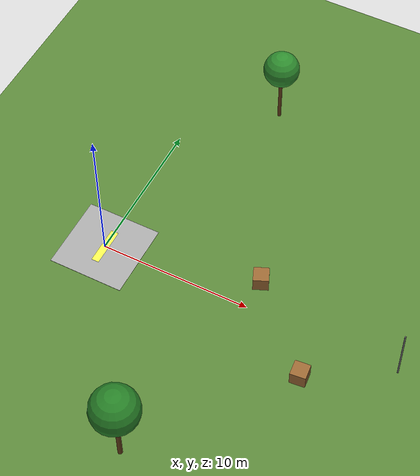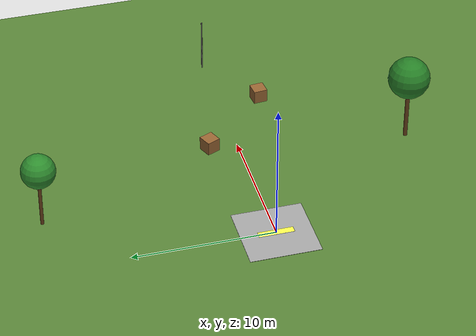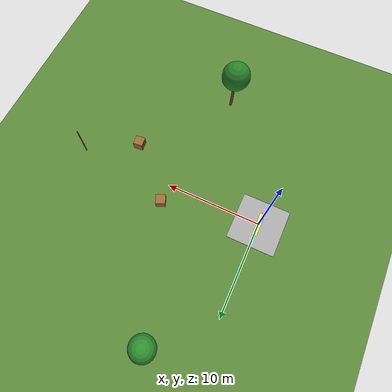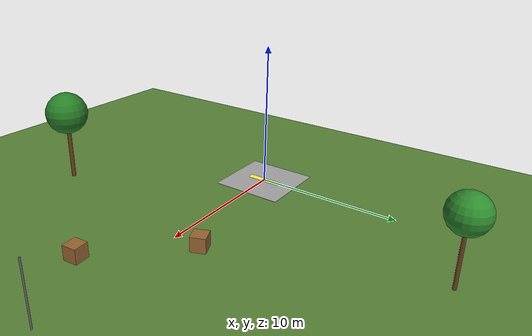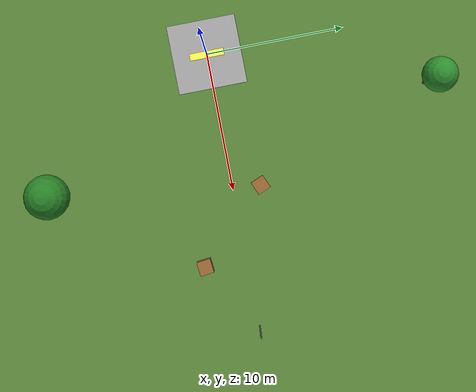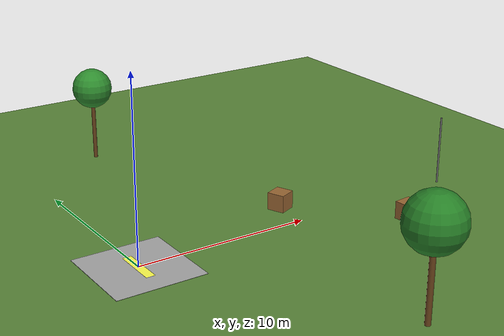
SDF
<?xml version="1.0"?>
<sdf version="1.9">
  <world name="outdoor_field">

    <!-- ═══════════════════════ PHYSICS ═══════════════════════════════ -->
    <physics name="1ms" type="dart">
      <max_step_size>0.001</max_step_size>   <!-- 1 kHz — good for multirotor -->
      <real_time_factor>1.0</real_time_factor>
    </physics>

    <!-- ═══════════════════════ PLUGINS ═══════════════════════════════ -->
    <plugin filename="gz-sim-physics-system"
            name="gz::sim::systems::Physics"/>
    <plugin filename="gz-sim-sensors-system"
            name="gz::sim::systems::Sensors">
      <render_engine>ogre2</render_engine>
    </plugin>
    <plugin filename="gz-sim-imu-system"
            name="gz::sim::systems::Imu"/>
    <plugin filename="gz-sim-air-pressure-system"
            name="gz::sim::systems::AirPressure"/>
    <plugin filename="gz-sim-navsat-system"
            name="gz::sim::systems::NavSat"/>
    <plugin filename="gz-sim-magnetometer-system"
            name="gz::sim::systems::Magnetometer"/>
    <plugin filename="gz-sim-user-commands-system"
            name="gz::sim::systems::UserCommands"/>
    <plugin filename="gz-sim-scene-broadcaster-system"
            name="gz::sim::systems::SceneBroadcaster"/>
    <plugin filename="gz-sim-contact-system"
	    name="gz::sim::systems::Contact"/>

    <!-- Wind — light breeze from the West, 3 m/s -->
    <plugin filename="gz-sim-wind-effects-system"
            name="gz::sim::systems::WindEffects">
      <force_approximation_scaling_factor>1</force_approximation_scaling_factor>
      <horizontal>
        <magnitude>
          <time_for_rise>10</time_for_rise>
          <sin><amplitude_percent>0.05</amplitude_percent><period>60</period></sin>
          <noise type="gaussian"><mean>0</mean><stddev>0.1</stddev></noise>
        </magnitude>
        <direction>
          <time_for_rise>30</time_for_rise>
          <sin><amplitude>5</amplitude><period>20</period></sin>
          <noise type="gaussian"><mean>0</mean><stddev>0.5</stddev></noise>
        </direction>
      </horizontal>
      <vertical><noise type="gaussian"><mean>0</mean><stddev>0.1</stddev></noise></vertical>
      <mean_wind_velocity>3 0 0</mean_wind_velocity>
    </plugin>

    <!-- ═══════════════════════ LIGHTING ══════════════════════════════ -->
    <light name="sun" type="directional">
      <cast_shadows>true</cast_shadows>
      <pose>0 0 100 0 0.4 0.785</pose>   <!-- morning light, SE direction -->
      <diffuse>0.95 0.92 0.88 1</diffuse>
      <specular>0.3 0.3 0.3 1</specular>
      <direction>-0.5 0.1 -0.9</direction>
      <attenuation><range>1000</range><constant>0.9</constant><linear>0.01</linear><quadratic>0.001</quadratic></attenuation>
    </light>

    <!-- Ambient sky glow -->
    <scene>
      <ambient>0.55 0.60 0.65 1</ambient>
      <background>0.53 0.71 0.89 1</background>
      <shadows>true</shadows>
    </scene>

    <!-- ═════════════════════ GROUND PLANE ════════════════════════════ -->
    <model name="ground_plane">
      <static>true</static>
      <link name="link">
        <collision name="ground_collision">
          <geometry><plane><normal>0 0 1</normal><size>200 200</size></plane></geometry>
          <surface>
            <friction><ode><mu>0.8</mu><mu2>0.8</mu2></ode></friction>
            <bounce><restitution_coefficient>0</restitution_coefficient></bounce>
          </surface>
        </collision>
        <visual name="ground_visual">
          <cast_shadows>false</cast_shadows>
          <geometry><plane><normal>0 0 1</normal><size>200 200</size></plane></geometry>
          <material>
            <ambient>0.28 0.40 0.18 1</ambient>   <!-- grass green -->
            <diffuse>0.35 0.52 0.22 1</diffuse>
            <specular>0.02 0.02 0.02 1</specular>
          </material>
        </visual>
      </link>
    </model>

    <!-- ═══════════════════ LANDING PAD ═══════════════════════════════ -->
    <!--
      5×5m concrete pad centred at origin — the Velodyne lidar will see
      its sharp edges clearly, making it a good precision-landing target.
    -->
    <model name="landing_pad">
      <static>true</static>
      <pose>0 0 0.01 0 0 0</pose>
      <link name="link">
        <collision name="pad_collision">
          <geometry><box><size>5 5 0.02</size></box></geometry>
        </collision>
        <visual name="pad_visual">
          <geometry><box><size>5 5 0.02</size></box></geometry>
          <material>
            <ambient>0.55 0.55 0.55 1</ambient>
            <diffuse>0.65 0.65 0.65 1</diffuse>
            <specular>0.1 0.1 0.1 1</specular>
          </material>
        </visual>
        <!-- H marker painted on pad -->
        <visual name="h_marker">
          <pose>0 0 0.011 0 0 0</pose>
          <geometry><box><size>0.5 2.5 0.001</size></box></geometry>
          <material><ambient>0.9 0.9 0.2 1</ambient><diffuse>1 1 0.3 1</diffuse></material>
        </visual>
      </link>
    </model>

    <!-- ══════════════ OBSTACLE OBJECTS (OAK-D Pro targets) ═══════════ -->
    <!--
      A handful of obstacles scattered around the field so you can test
      the front-facing depth camera / obstacle avoidance stack.
    -->

    <!-- Obstacle 1: wooden crate, 10m ahead -->
    <model name="crate_1">
      <static>true</static>
      <pose>10 2 0.5 0 0 0.4</pose>
      <link name="link">
        <collision name="col"><geometry><box><size>1 1 1</size></box></geometry></collision>
        <visual name="vis">
          <geometry><box><size>1 1 1</size></box></geometry>
          <material><ambient>0.55 0.38 0.18 1</ambient><diffuse>0.6 0.4 0.2 1</diffuse></material>
        </visual>
      </link>
    </model>

    <!-- Obstacle 2: crate, 15m ahead and left -->
    <model name="crate_2">
      <static>true</static>
      <pose>15 -3 0.5 0 0 0.1</pose>
      <link name="link">
        <collision name="col"><geometry><box><size>1 1 1</size></box></geometry></collision>
        <visual name="vis">
          <geometry><box><size>1 1 1</size></box></geometry>
          <material><ambient>0.55 0.38 0.18 1</ambient><diffuse>0.6 0.4 0.2 1</diffuse></material>
        </visual>
      </link>
    </model>

    <!-- Obstacle 3: tall post / pole, 20m ahead -->
    <model name="pole_1">
      <static>true</static>
      <pose>20 0 2 0 0 0</pose>
      <link name="link">
        <collision name="col"><geometry><cylinder><radius>0.05</radius><length>4</length></cylinder></geometry></collision>
        <visual name="vis">
          <geometry><cylinder><radius>0.05</radius><length>4</length></cylinder></geometry>
          <material><ambient>0.3 0.3 0.3 1</ambient><diffuse>0.4 0.4 0.4 1</diffuse></material>
        </visual>
      </link>
    </model>

    <!-- Obstacle 4: tree-like cylinder + sphere, 12m right -->
    <model name="tree_1">
      <static>true</static>
      <pose>8 -12 0 0 0 0</pose>
      <link name="trunk">
        <pose>0 0 2 0 0 0</pose>
        <collision name="col"><geometry><cylinder><radius>0.15</radius><length>4</length></cylinder></geometry></collision>
        <visual name="vis">
          <geometry><cylinder><radius>0.15</radius><length>4</length></cylinder></geometry>
          <material><ambient>0.3 0.2 0.1 1</ambient><diffuse>0.4 0.25 0.1 1</diffuse></material>
        </visual>
      </link>
      <link name="canopy">
        <pose>0 0 5 0 0 0</pose>
        <collision name="col"><geometry><sphere><radius>1.5</radius></sphere></geometry></collision>
        <visual name="vis">
          <geometry><sphere><radius>1.5</radius></sphere></geometry>
          <material><ambient>0.1 0.4 0.1 1</ambient><diffuse>0.15 0.5 0.15 1</diffuse></material>
        </visual>
      </link>
      <joint name="canopy_joint" type="fixed"><parent>trunk</parent><child>canopy</child></joint>
    </model>

    <!-- Obstacle 5: tree, 18m left -->
    <model name="tree_2">
      <static>true</static>
      <pose>5 15 0 0 0 0</pose>
      <link name="trunk">
        <pose>0 0 1.8 0 0 0</pose>
        <collision name="col"><geometry><cylinder><radius>0.12</radius><length>3.6</length></cylinder></geometry></collision>
        <visual name="vis">
          <geometry><cylinder><radius>0.12</radius><length>3.6</length></cylinder></geometry>
          <material><ambient>0.3 0.2 0.1 1</ambient><diffuse>0.4 0.25 0.1 1</diffuse></material>
        </visual>
      </link>
      <link name="canopy">
        <pose>0 0 4.5 0 0 0</pose>
        <collision name="col"><geometry><sphere><radius>1.2</radius></sphere></geometry></collision>
        <visual name="vis">
          <geometry><sphere><radius>1.2</radius></sphere></geometry>
          <material><ambient>0.12 0.45 0.12 1</ambient><diffuse>0.18 0.55 0.18 1</diffuse></material>
        </visual>
      </link>
      <joint name="canopy_joint" type="fixed"><parent>trunk</parent><child>canopy</child></joint>
    </model>

  </world>
</sdf>
